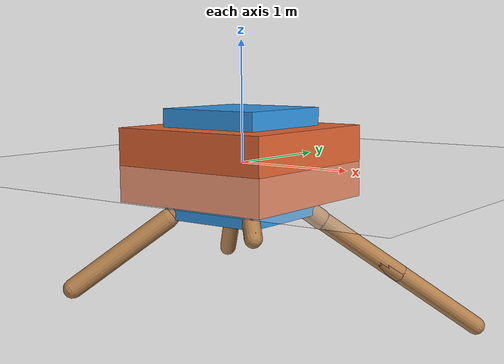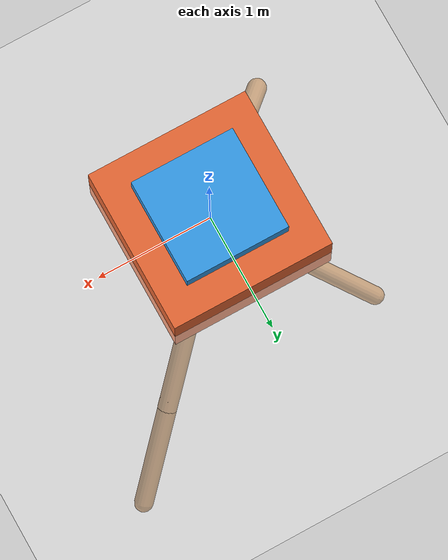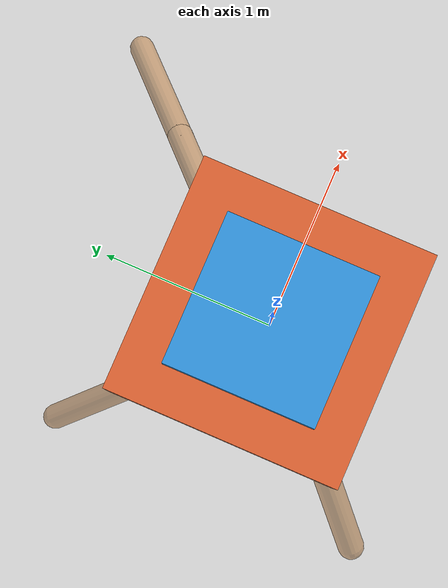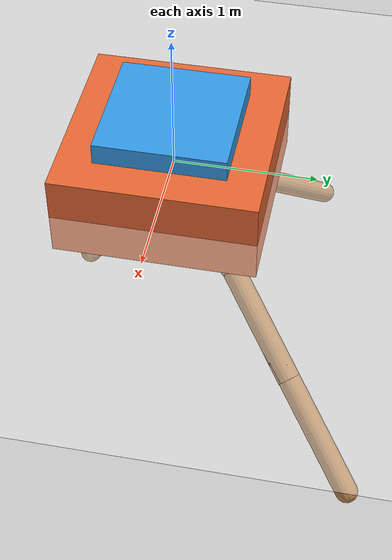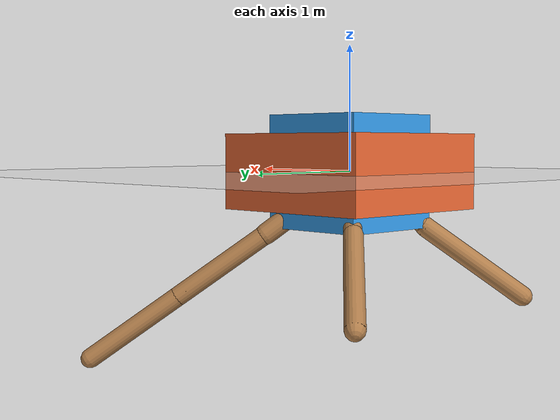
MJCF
<mujoco model="dex-gripper">
  <asset>
    <texture name="skybox" type="skybox" builtin="gradient" rgb1=".2 .3 .4" rgb2="0 0 0" width="800" height="800" mark="random" markrgb="1 1 1"/>
    <texture name="grid" type="2d" builtin="checker" rgb1=".2 .1 .2" rgb2=".3 .2 .3" width="300" height="300" mark="edge" markrgb=".3 .2 .3"/>
    <material name="grid" texture="grid" texrepeat="1 1" texuniform="true" reflectance=".2"/>
    <material name="self" rgba=".7 .5 .3 1"/>
  </asset>
  <visual>
    <headlight ambient=".4 .4 .4" diffuse=".8 .8 .8" specular="0.1 0.1 0.1"/>
    <map znear=".001"/>
    <quality shadowsize="16384"/>
  </visual>
  <compiler angle="degree" coordinate="global" inertiafromgeom="true"/>
  <option integrator="RK4" timestep="0.01"/>
  <default>
    <joint armature="1" damping="1" limited="true"/>
    <geom conaffinity="0" condim="3" density="5.0" friction="1 0.5 0.5" margin="0.01" rgba=".7 .5 .3 1"/>
  </default>
  <worldbody>
    <light cutoff="100" diffuse="1 1 1" dir="0.3 0 -1.3" directional="true" exponent="1" pos="-30 0 130" specular=".1 .1 .1"/>
    <geom conaffinity="1" condim="3" name="floor" pos="0 0 0" rgba="1 1 1 1" size="200 200 .125" type="plane" material="grid"/>
    <body name="0" pos="0 0 0" gravcomp="1">
      <camera name="track" mode="fixed" pos="0 10 5" quat="0 0 0.547 0.892"/>
      <geom pos="0 0 0" size="0.266901 0.213166 0.18355" type="ellipsoid"/>
      <joint name="root_x" type="slide" axis="1 0 0" pos="0 0 0" limited="false" armature="0" damping="0"/>
      <joint name="root_y" type="slide" axis="0 1 0" pos="0 0 0" limited="false" armature="0" damping="0"/>
      <joint name="root_z" type="slide" axis="0 0 1" pos="0 0 0" limited="false" armature="0" damping="0"/>
      <body name="1" pos="0 0 0" gravcomp="1">
        <joint axis="-0.707107 0.707107 0" name="1_joint" pos="0 0 0" range="-30 30" type="hinge" damping="0"/>
        <geom fromto="-0.045479 -0.050147 0.050463 0.450616 0.496875 -0.5" size="0.08543 0.08543 0.08543" type="capsule"/>
        <body name="11" pos="0.450616 0.496875 -0.5" gravcomp="1">
          <joint axis="-0.707107 0.707107 0" name="11_joint" pos="0.450616 0.496875 -0.5" range="-30 30" type="hinge" damping="0"/>
          <geom fromto="0.403543 0.449973 -0.452847 0.949764 0.994222 -1" size="0.079166 0.079166 0.079166" type="capsule"/>
          <body name="111" pos="0.949764 0.994222 -1" gravcomp="1">
            <joint axis="-0.707107 0.707107 0" name="111_joint" pos="0.949764 0.994222 -1" range="-30 30" type="hinge" damping="0"/>
            <geom fromto="0.895738 0.940236 -0.945826 1.448395 1.492486 -1.5" size="0.078713 0.078713 0.078713" type="capsule"/>
          </body>
        </body>
        <body name="21" pos="0.450616 0.496875 -0.5" gravcomp="1">
          <joint axis="-0.707107 0.707107 0" name="21_joint" pos="0.450616 0.496875 -0.5" range="-30 30" type="hinge" damping="0"/>
          <geom fromto="0.382716 0.431121 -0.43208 0.950468 0.980938 -1" size="0.070777 0.070777 0.070777" type="capsule"/>
        </body>
      </body>
      <body name="2" pos="0 0 0" gravcomp="1">
        <joint axis="-0.707107 -0.707107 0" name="2_joint" pos="0 0 0" range="-30 30" type="hinge" damping="0"/>
        <geom fromto="0.044887 -0.044924 0.045616 -0.492011 0.492416 -0.5" size="0.070008 0.070008 0.070008" type="capsule"/>
        <body name="12" pos="-0.492011 0.492416 -0.5" gravcomp="1">
          <joint axis="-0.707107 -0.707107 0" name="12_joint" pos="-0.492011 0.492416 -0.5" range="-30 30" type="hinge" damping="0"/>
          <geom fromto="-0.439346 0.436918 -0.444449 -0.966031 0.991937 -1" size="0.075703 0.075703 0.075703" type="capsule"/>
        </body>
      </body>
      <body name="3" pos="0 0 0" gravcomp="1">
        <joint axis="0.707107 -0.707107 0" name="3_joint" pos="0 0 0" range="-30 30" type="hinge" damping="0"/>
        <geom fromto="0.043517 0.045498 0.045791 -0.475176 -0.496804 -0.5" size="0.070095 0.070095 0.070095" type="capsule"/>
        <body name="13" pos="-0.475176 -0.496804 -0.5" gravcomp="1">
          <joint axis="0.707107 -0.707107 0" name="13_joint" pos="-0.475176 -0.496804 -0.5" range="-30 30" type="hinge" damping="0"/>
          <geom fromto="-0.417723 -0.440299 -0.442481 -0.974603 -0.987981 -1" size="0.080892 0.080892 0.080892" type="capsule"/>
        </body>
        <body name="23" pos="-0.475176 -0.496804 -0.5" gravcomp="1">
          <joint axis="0.707107 -0.707107 0" name="23_joint" pos="-0.475176 -0.496804 -0.5" range="-30 30" type="hinge" damping="0"/>
          <geom fromto="-0.414662 -0.436356 -0.439345 -0.974015 -0.995089 -1" size="0.073394 0.073394 0.073394" type="capsule"/>
        </body>
      </body>
      <body name="4" pos="0 0 0" gravcomp="1">
        <joint axis="0.707107 0.707107 0" name="4_joint" pos="0 0 0" range="-30 30" type="hinge" damping="0"/>
        <geom fromto="-0.054362 0.054843 0.055279 0.491701 -0.496051 -0.5" size="0.070612 0.070612 0.070612" type="capsule"/>
      </body>
    </body>
    <body name="box_1" pos="0 0 0">
      <freejoint name="box_1_joint"/>
      <geom name="box_1" type="box" size="0.45 0.45 0.45" rgba="0.2 0.6 0.9 1.0" contype="1" conaffinity="1" density="10" friction="2.5 0.1 0.05"/>
    </body>
    <body name="box_2" pos="3.0 0 0.425">
      <freejoint name="box_2_joint"/>
      <geom name="box_2" type="box" size="0.7 0.7 0.3" rgba="0.9 0.4 0.2 1.0" contype="1" conaffinity="1" density="10" friction="2.5 0.1 0.05"/>
    </body>
  </worldbody>
  <actuator>
    <motor name="root_x_motor" joint="root_x" gear="50" ctrllimited="true" ctrlrange="-1 1"/>
    <motor name="root_y_motor" joint="root_y" gear="50" ctrllimited="true" ctrlrange="-1 1"/>
    <motor name="root_z_motor" joint="root_z" gear="50" ctrllimited="true" ctrlrange="-1 1"/>
    <motor ctrllimited="true" ctrlrange="-1.0 1.0" joint="1_joint" gear="20.782167" name="1_joint"/>
    <motor ctrllimited="true" ctrlrange="-1.0 1.0" joint="2_joint" gear="38.496352" name="2_joint"/>
    <motor ctrllimited="true" ctrlrange="-1.0 1.0" joint="3_joint" gear="35.972353" name="3_joint"/>
    <motor ctrllimited="true" ctrlrange="-1.0 1.0" joint="4_joint" gear="71.340383" name="4_joint"/>
    <motor ctrllimited="true" ctrlrange="-1.0 1.0" joint="11_joint" gear="43.161754" name="11_joint"/>
    <motor ctrllimited="true" ctrlrange="-1.0 1.0" joint="12_joint" gear="52.184819" name="12_joint"/>
    <motor ctrllimited="true" ctrlrange="-1.0 1.0" joint="13_joint" gear="36.69655" name="13_joint"/>
    <motor ctrllimited="true" ctrlrange="-1.0 1.0" joint="21_joint" gear="67.012787" name="21_joint"/>
    <motor ctrllimited="true" ctrlrange="-1.0 1.0" joint="23_joint" gear="45.592127" name="23_joint"/>
    <motor ctrllimited="true" ctrlrange="-1.0 1.0" joint="111_joint" gear="56.894577" name="111_joint"/>
  </actuator>
</mujoco>
